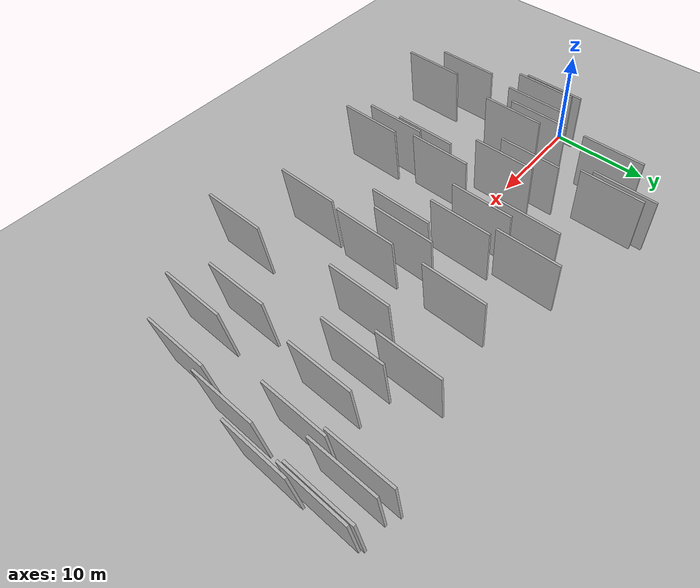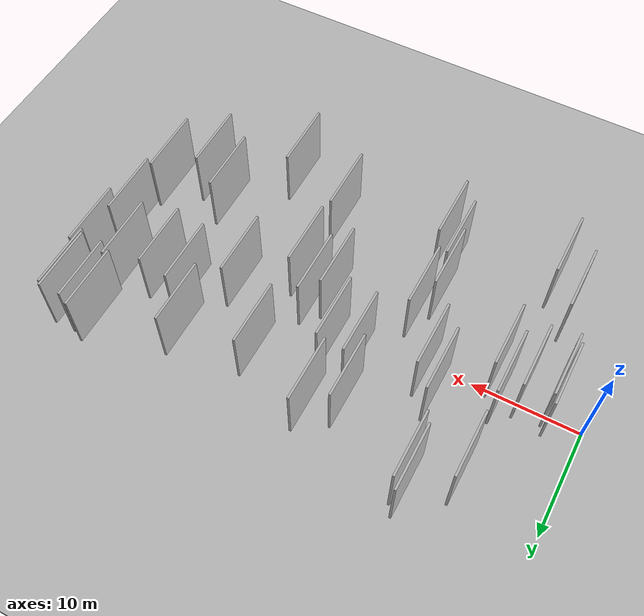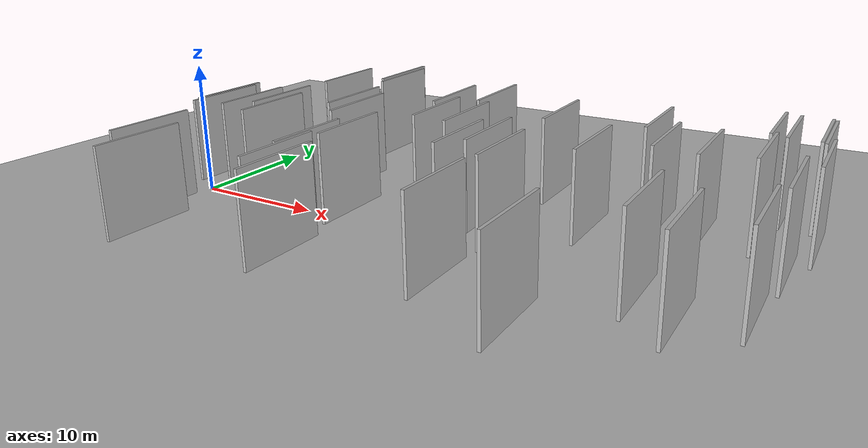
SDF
<?xml version="1.0" encoding="utf-8"?>

<sdf version="1.6">

   <world name="default">

      <gui fullscreen="0">

         <camera name="user_camera">

            <pose>-15 0 4.57585 0 0 0</pose>

            <view_controller>orbit</view_controller>

         </camera>

      </gui>

      <scene>

         <sky>

           <clouds>

             <speed>12</speed>

           </clouds>

         </sky>

         <ambient>0.4 0.4 0.4 1</ambient>

         <background>0.7 0.7 0.7 1</background>

         <shadows>1</shadows>

      </scene>

      <gravity>0 0 -9.8066</gravity>

      <magnetic_field>6e-06 2.3e-05 -4.2e-05</magnetic_field>

      <physics default="0" name="default_physics" type="ode">

         <ode>

            <solver>

               <type>quick</type>

               <iters>10</iters>

               <sor>1.0</sor>

               <use_dynamic_moi_rescaling>0</use_dynamic_moi_rescaling>

            </solver>

            <constraints>

               <cfm>0</cfm>

               <erp>0.2</erp>

               <contact_max_correcting_vel>100</contact_max_correcting_vel>

               <contact_surface_layer>0.001</contact_surface_layer>

            </constraints>

         </ode>

         <max_step_size>0.004</max_step_size>

         <real_time_factor>1</real_time_factor>

         <real_time_update_rate>250</real_time_update_rate>

      </physics>

      <light name="sun" type="directional">

         <cast_shadows>1</cast_shadows>

         <pose>0 0 10 0 0 0</pose>

         <diffuse>0.8 0.8 0.8 1</diffuse>

         <specular>0.2 0.2 0.2 1</specular>

         <attenuation>

            <range>1000</range>

            <constant>0.9</constant>

            <linear>0.01</linear>

            <quadratic>0.001</quadratic>

         </attenuation>

         <direction>-0.5 0.1 -0.9</direction>

      </light>

      <include>

         <name>ground_plane_1</name>

         <uri>model://HANNAS_ground_plane</uri>

         <pose>0 0 0  0 0 0</pose>

      </include>

      <include>

         <name>ground_plane_2</name>

         <uri>model://HANNAS_ground_plane</uri>

         <pose>100 0 0  0 0 0</pose>

      </include>

      <model name="HANNAS_wall_1">

         <static>1</static>

         <pose frame="">27.0744 -9.0535 2.5 0.000000 0.000000 1.570796</pose>

         <link name="link">

            <pose frame="">0 0 3.00 0 0 0</pose>

            <collision name="collision">

               <geometry>

                  <box>

                     <size>6.00 0.2 6.00</size>

                  </box>

               </geometry>

               <max_contacts>10</max_contacts>

               <surface>

                  <contact>

                     <ode/>

                  </contact>

                  <bounce/>

                  <friction>

                     <torsional>

                        <ode/>

                     </torsional>

                     <ode/>

                  </friction>

               </surface>

            </collision>

            <visual name="visual">

               <cast_shadows>0</cast_shadows>

               <geometry>

                  <box>

                     <size>6.00 0.2 6.00</size>

                  </box>

               </geometry>

               <material>

                  <script>

                     <uri>model://HANNAS_wall/materials/scripts</uri>

                     <uri>model://HANNAS_wall/materials/textures</uri>

                     <name>vrc/HANNAS_wall</name>

                  </script>

               </material>

            </visual>

            <self_collide>0</self_collide>

            <enable_wind>0</enable_wind>

            <kinematic>0</kinematic>

         </link>

      </model>

      <model name="HANNAS_wall_2">

         <static>1</static>

         <pose frame="">13.7889 1.6842 2.5 0.000000 0.000000 1.570796</pose>

         <link name="link">

            <pose frame="">0 0 3.00 0 0 0</pose>

            <collision name="collision">

               <geometry>

                  <box>

                     <size>6.00 0.2 6.00</size>

                  </box>

               </geometry>

               <max_contacts>10</max_contacts>

               <surface>

                  <contact>

                     <ode/>

                  </contact>

                  <bounce/>

                  <friction>

                     <torsional>

                        <ode/>

                     </torsional>

                     <ode/>

                  </friction>

               </surface>

            </collision>

            <visual name="visual">

               <cast_shadows>0</cast_shadows>

               <geometry>

                  <box>

                     <size>6.00 0.2 6.00</size>

                  </box>

               </geometry>

               <material>

                  <script>

                     <uri>model://HANNAS_wall/materials/scripts</uri>

                     <uri>model://HANNAS_wall/materials/textures</uri>

                     <name>vrc/HANNAS_wall</name>

                  </script>

               </material>

            </visual>

            <self_collide>0</self_collide>

            <enable_wind>0</enable_wind>

            <kinematic>0</kinematic>

         </link>

      </model>

      <model name="HANNAS_wall_3">

         <static>1</static>

         <pose frame="">3.3820 -0.7569 2.5 0.000000 0.000000 1.570796</pose>

         <link name="link">

            <pose frame="">0 0 3.00 0 0 0</pose>

            <collision name="collision">

               <geometry>

                  <box>

                     <size>6.00 0.2 6.00</size>

                  </box>

               </geometry>

               <max_contacts>10</max_contacts>

               <surface>

                  <contact>

                     <ode/>

                  </contact>

                  <bounce/>

                  <friction>

                     <torsional>

                        <ode/>

                     </torsional>

                     <ode/>

                  </friction>

               </surface>

            </collision>

            <visual name="visual">

               <cast_shadows>0</cast_shadows>

               <geometry>

                  <box>

                     <size>6.00 0.2 6.00</size>

                  </box>

               </geometry>

               <material>

                  <script>

                     <uri>model://HANNAS_wall/materials/scripts</uri>

                     <uri>model://HANNAS_wall/materials/textures</uri>

                     <name>vrc/HANNAS_wall</name>

                  </script>

               </material>

            </visual>

            <self_collide>0</self_collide>

            <enable_wind>0</enable_wind>

            <kinematic>0</kinematic>

         </link>

      </model>

      <model name="HANNAS_wall_4">

         <static>1</static>

         <pose frame="">15.6439 -5.7758 2.5 0.000000 0.000000 1.570796</pose>

         <link name="link">

            <pose frame="">0 0 3.00 0 0 0</pose>

            <collision name="collision">

               <geometry>

                  <box>

                     <size>6.00 0.2 6.00</size>

                  </box>

               </geometry>

               <max_contacts>10</max_contacts>

               <surface>

                  <contact>

                     <ode/>

                  </contact>

                  <bounce/>

                  <friction>

                     <torsional>

                        <ode/>

                     </torsional>

                     <ode/>

                  </friction>

               </surface>

            </collision>

            <visual name="visual">

               <cast_shadows>0</cast_shadows>

               <geometry>

                  <box>

                     <size>6.00 0.2 6.00</size>

                  </box>

               </geometry>

               <material>

                  <script>

                     <uri>model://HANNAS_wall/materials/scripts</uri>

                     <uri>model://HANNAS_wall/materials/textures</uri>

                     <name>vrc/HANNAS_wall</name>

                  </script>

               </material>

            </visual>

            <self_collide>0</self_collide>

            <enable_wind>0</enable_wind>

            <kinematic>0</kinematic>

         </link>

      </model>

      <model name="HANNAS_wall_5">

         <static>1</static>

         <pose frame="">25.3376 0.0256 2.5 0.000000 0.000000 1.570796</pose>

         <link name="link">

            <pose frame="">0 0 3.00 0 0 0</pose>

            <collision name="collision">

               <geometry>

                  <box>

                     <size>6.00 0.2 6.00</size>

                  </box>

               </geometry>

               <max_contacts>10</max_contacts>

               <surface>

                  <contact>

                     <ode/>

                  </contact>

                  <bounce/>

                  <friction>

                     <torsional>

                        <ode/>

                     </torsional>

                     <ode/>

                  </friction>

               </surface>

            </collision>

            <visual name="visual">

               <cast_shadows>0</cast_shadows>

               <geometry>

                  <box>

                     <size>6.00 0.2 6.00</size>

                  </box>

               </geometry>

               <material>

                  <script>

                     <uri>model://HANNAS_wall/materials/scripts</uri>

                     <uri>model://HANNAS_wall/materials/textures</uri>

                     <name>vrc/HANNAS_wall</name>

                  </script>

               </material>

            </visual>

            <self_collide>0</self_collide>

            <enable_wind>0</enable_wind>

            <kinematic>0</kinematic>

         </link>

      </model>

      <model name="HANNAS_wall_6">

         <static>1</static>

         <pose frame="">5.7760 -0.3641 2.5 0.000000 0.000000 1.570796</pose>

         <link name="link">

            <pose frame="">0 0 3.00 0 0 0</pose>

            <collision name="collision">

               <geometry>

                  <box>

                     <size>6.00 0.2 6.00</size>

                  </box>

               </geometry>

               <max_contacts>10</max_contacts>

               <surface>

                  <contact>

                     <ode/>

                  </contact>

                  <bounce/>

                  <friction>

                     <torsional>

                        <ode/>

                     </torsional>

                     <ode/>

                  </friction>

               </surface>

            </collision>

            <visual name="visual">

               <cast_shadows>0</cast_shadows>

               <geometry>

                  <box>

                     <size>6.00 0.2 6.00</size>

                  </box>

               </geometry>

               <material>

                  <script>

                     <uri>model://HANNAS_wall/materials/scripts</uri>

                     <uri>model://HANNAS_wall/materials/textures</uri>

                     <name>vrc/HANNAS_wall</name>

                  </script>

               </material>

            </visual>

            <self_collide>0</self_collide>

            <enable_wind>0</enable_wind>

            <kinematic>0</kinematic>

         </link>

      </model>

      <model name="HANNAS_wall_7">

         <static>1</static>

         <pose frame="">38.2298 3.8320 2.5 0.000000 0.000000 1.570796</pose>

         <link name="link">

            <pose frame="">0 0 3.00 0 0 0</pose>

            <collision name="collision">

               <geometry>

                  <box>

                     <size>6.00 0.2 6.00</size>

                  </box>

               </geometry>

               <max_contacts>10</max_contacts>

               <surface>

                  <contact>

                     <ode/>

                  </contact>

                  <bounce/>

                  <friction>

                     <torsional>

                        <ode/>

                     </torsional>

                     <ode/>

                  </friction>

               </surface>

            </collision>

            <visual name="visual">

               <cast_shadows>0</cast_shadows>

               <geometry>

                  <box>

                     <size>6.00 0.2 6.00</size>

                  </box>

               </geometry>

               <material>

                  <script>

                     <uri>model://HANNAS_wall/materials/scripts</uri>

                     <uri>model://HANNAS_wall/materials/textures</uri>

                     <name>vrc/HANNAS_wall</name>

                  </script>

               </material>

            </visual>

            <self_collide>0</self_collide>

            <enable_wind>0</enable_wind>

            <kinematic>0</kinematic>

         </link>

      </model>

      <model name="HANNAS_wall_8">

         <static>1</static>

         <pose frame="">11.3485 11.0129 2.5 0.000000 0.000000 1.570796</pose>

         <link name="link">

            <pose frame="">0 0 3.00 0 0 0</pose>

            <collision name="collision">

               <geometry>

                  <box>

                     <size>6.00 0.2 6.00</size>

                  </box>

               </geometry>

               <max_contacts>10</max_contacts>

               <surface>

                  <contact>

                     <ode/>

                  </contact>

                  <bounce/>

                  <friction>

                     <torsional>

                        <ode/>

                     </torsional>

                     <ode/>

                  </friction>

               </surface>

            </collision>

            <visual name="visual">

               <cast_shadows>0</cast_shadows>

               <geometry>

                  <box>

                     <size>6.00 0.2 6.00</size>

                  </box>

               </geometry>

               <material>

                  <script>

                     <uri>model://HANNAS_wall/materials/scripts</uri>

                     <uri>model://HANNAS_wall/materials/textures</uri>

                     <name>vrc/HANNAS_wall</name>

                  </script>

               </material>

            </visual>

            <self_collide>0</self_collide>

            <enable_wind>0</enable_wind>

            <kinematic>0</kinematic>

         </link>

      </model>

      <model name="HANNAS_wall_9">

         <static>1</static>

         <pose frame="">44.0192 9.7655 2.5 0.000000 0.000000 1.570796</pose>

         <link name="link">

            <pose frame="">0 0 3.00 0 0 0</pose>

            <collision name="collision">

               <geometry>

                  <box>

                     <size>6.00 0.2 6.00</size>

                  </box>

               </geometry>

               <max_contacts>10</max_contacts>

               <surface>

                  <contact>

                     <ode/>

                  </contact>

                  <bounce/>

                  <friction>

                     <torsional>

                        <ode/>

                     </torsional>

                     <ode/>

                  </friction>

               </surface>

            </collision>

            <visual name="visual">

               <cast_shadows>0</cast_shadows>

               <geometry>

                  <box>

                     <size>6.00 0.2 6.00</size>

                  </box>

               </geometry>

               <material>

                  <script>

                     <uri>model://HANNAS_wall/materials/scripts</uri>

                     <uri>model://HANNAS_wall/materials/textures</uri>

                     <name>vrc/HANNAS_wall</name>

                  </script>

               </material>

            </visual>

            <self_collide>0</self_collide>

            <enable_wind>0</enable_wind>

            <kinematic>0</kinematic>

         </link>

      </model>

      <model name="HANNAS_wall_10">

         <static>1</static>

         <pose frame="">19.3860 3.4030 2.5 0.000000 0.000000 1.570796</pose>

         <link name="link">

            <pose frame="">0 0 3.00 0 0 0</pose>

            <collision name="collision">

               <geometry>

                  <box>

                     <size>6.00 0.2 6.00</size>

                  </box>

               </geometry>

               <max_contacts>10</max_contacts>

               <surface>

                  <contact>

                     <ode/>

                  </contact>

                  <bounce/>

                  <friction>

                     <torsional>

                        <ode/>

                     </torsional>

                     <ode/>

                  </friction>

               </surface>

            </collision>

            <visual name="visual">

               <cast_shadows>0</cast_shadows>

               <geometry>

                  <box>

                     <size>6.00 0.2 6.00</size>

                  </box>

               </geometry>

               <material>

                  <script>

                     <uri>model://HANNAS_wall/materials/scripts</uri>

                     <uri>model://HANNAS_wall/materials/textures</uri>

                     <name>vrc/HANNAS_wall</name>

                  </script>

               </material>

            </visual>

            <self_collide>0</self_collide>

            <enable_wind>0</enable_wind>

            <kinematic>0</kinematic>

         </link>

      </model>

      <model name="HANNAS_wall_11">

         <static>1</static>

         <pose frame="">33.8663 7.9753 2.5 0.000000 0.000000 1.570796</pose>

         <link name="link">

            <pose frame="">0 0 3.00 0 0 0</pose>

            <collision name="collision">

               <geometry>

                  <box>

                     <size>6.00 0.2 6.00</size>

                  </box>

               </geometry>

               <max_contacts>10</max_contacts>

               <surface>

                  <contact>

                     <ode/>

                  </contact>

                  <bounce/>

                  <friction>

                     <torsional>

                        <ode/>

                     </torsional>

                     <ode/>

                  </friction>

               </surface>

            </collision>

            <visual name="visual">

               <cast_shadows>0</cast_shadows>

               <geometry>

                  <box>

                     <size>6.00 0.2 6.00</size>

                  </box>

               </geometry>

               <material>

                  <script>

                     <uri>model://HANNAS_wall/materials/scripts</uri>

                     <uri>model://HANNAS_wall/materials/textures</uri>

                     <name>vrc/HANNAS_wall</name>

                  </script>

               </material>

            </visual>

            <self_collide>0</self_collide>

            <enable_wind>0</enable_wind>

            <kinematic>0</kinematic>

         </link>

      </model>

      <model name="HANNAS_wall_12">

         <static>1</static>

         <pose frame="">31.7840 1.3679 2.5 0.000000 0.000000 1.570796</pose>

         <link name="link">

            <pose frame="">0 0 3.00 0 0 0</pose>

            <collision name="collision">

               <geometry>

                  <box>

                     <size>6.00 0.2 6.00</size>

                  </box>

               </geometry>

               <max_contacts>10</max_contacts>

               <surface>

                  <contact>

                     <ode/>

                  </contact>

                  <bounce/>

                  <friction>

                     <torsional>

                        <ode/>

                     </torsional>

                     <ode/>

                  </friction>

               </surface>

            </collision>

            <visual name="visual">

               <cast_shadows>0</cast_shadows>

               <geometry>

                  <box>

                     <size>6.00 0.2 6.00</size>

                  </box>

               </geometry>

               <material>

                  <script>

                     <uri>model://HANNAS_wall/materials/scripts</uri>

                     <uri>model://HANNAS_wall/materials/textures</uri>

                     <name>vrc/HANNAS_wall</name>

                  </script>

               </material>

            </visual>

            <self_collide>0</self_collide>

            <enable_wind>0</enable_wind>

            <kinematic>0</kinematic>

         </link>

      </model>

      <model name="HANNAS_wall_13">

         <static>1</static>

         <pose frame="">44.2721 9.4727 2.5 0.000000 0.000000 1.570796</pose>

         <link name="link">

            <pose frame="">0 0 3.00 0 0 0</pose>

            <collision name="collision">

               <geometry>

                  <box>

                     <size>6.00 0.2 6.00</size>

                  </box>

               </geometry>

               <max_contacts>10</max_contacts>

               <surface>

                  <contact>

                     <ode/>

                  </contact>

                  <bounce/>

                  <friction>

                     <torsional>

                        <ode/>

                     </torsional>

                     <ode/>

                  </friction>

               </surface>

            </collision>

            <visual name="visual">

               <cast_shadows>0</cast_shadows>

               <geometry>

                  <box>

                     <size>6.00 0.2 6.00</size>

                  </box>

               </geometry>

               <material>

                  <script>

                     <uri>model://HANNAS_wall/materials/scripts</uri>

                     <uri>model://HANNAS_wall/materials/textures</uri>

                     <name>vrc/HANNAS_wall</name>

                  </script>

               </material>

            </visual>

            <self_collide>0</self_collide>

            <enable_wind>0</enable_wind>

            <kinematic>0</kinematic>

         </link>

      </model>

      <model name="HANNAS_wall_14">

         <static>1</static>

         <pose frame="">8.4149 -1.1228 2.5 0.000000 0.000000 1.570796</pose>

         <link name="link">

            <pose frame="">0 0 3.00 0 0 0</pose>

            <collision name="collision">

               <geometry>

                  <box>

                     <size>6.00 0.2 6.00</size>

                  </box>

               </geometry>

               <max_contacts>10</max_contacts>

               <surface>

                  <contact>

                     <ode/>

                  </contact>

                  <bounce/>

                  <friction>

                     <torsional>

                        <ode/>

                     </torsional>

                     <ode/>

                  </friction>

               </surface>

            </collision>

            <visual name="visual">

               <cast_shadows>0</cast_shadows>

               <geometry>

                  <box>

                     <size>6.00 0.2 6.00</size>

                  </box>

               </geometry>

               <material>

                  <script>

                     <uri>model://HANNAS_wall/materials/scripts</uri>

                     <uri>model://HANNAS_wall/materials/textures</uri>

                     <name>vrc/HANNAS_wall</name>

                  </script>

               </material>

            </visual>

            <self_collide>0</self_collide>

            <enable_wind>0</enable_wind>

            <kinematic>0</kinematic>

         </link>

      </model>

      <model name="HANNAS_wall_15">

         <static>1</static>

         <pose frame="">16.0448 -8.9529 2.5 0.000000 0.000000 1.570796</pose>

         <link name="link">

            <pose frame="">0 0 3.00 0 0 0</pose>

            <collision name="collision">

               <geometry>

                  <box>

                     <size>6.00 0.2 6.00</size>

                  </box>

               </geometry>

               <max_contacts>10</max_contacts>

               <surface>

                  <contact>

                     <ode/>

                  </contact>

                  <bounce/>

                  <friction>

                     <torsional>

                        <ode/>

                     </torsional>

                     <ode/>

                  </friction>

               </surface>

            </collision>

            <visual name="visual">

               <cast_shadows>0</cast_shadows>

               <geometry>

                  <box>

                     <size>6.00 0.2 6.00</size>

                  </box>

               </geometry>

               <material>

                  <script>

                     <uri>model://HANNAS_wall/materials/scripts</uri>

                     <uri>model://HANNAS_wall/materials/textures</uri>

                     <name>vrc/HANNAS_wall</name>

                  </script>

               </material>

            </visual>

            <self_collide>0</self_collide>

            <enable_wind>0</enable_wind>

            <kinematic>0</kinematic>

         </link>

      </model>

      <model name="HANNAS_wall_16">

         <static>1</static>

         <pose frame="">16.7786 -3.1345 2.5 0.000000 0.000000 1.570796</pose>

         <link name="link">

            <pose frame="">0 0 3.00 0 0 0</pose>

            <collision name="collision">

               <geometry>

                  <box>

                     <size>6.00 0.2 6.00</size>

                  </box>

               </geometry>

               <max_contacts>10</max_contacts>

               <surface>

                  <contact>

                     <ode/>

                  </contact>

                  <bounce/>

                  <friction>

                     <torsional>

                        <ode/>

                     </torsional>

                     <ode/>

                  </friction>

               </surface>

            </collision>

            <visual name="visual">

               <cast_shadows>0</cast_shadows>

               <geometry>

                  <box>

                     <size>6.00 0.2 6.00</size>

                  </box>

               </geometry>

               <material>

                  <script>

                     <uri>model://HANNAS_wall/materials/scripts</uri>

                     <uri>model://HANNAS_wall/materials/textures</uri>

                     <name>vrc/HANNAS_wall</name>

                  </script>

               </material>

            </visual>

            <self_collide>0</self_collide>

            <enable_wind>0</enable_wind>

            <kinematic>0</kinematic>

         </link>

      </model>

      <model name="HANNAS_wall_17">

         <static>1</static>

         <pose frame="">39.8531 -7.6576 2.5 0.000000 0.000000 1.570796</pose>

         <link name="link">

            <pose frame="">0 0 3.00 0 0 0</pose>

            <collision name="collision">

               <geometry>

                  <box>

                     <size>6.00 0.2 6.00</size>

                  </box>

               </geometry>

               <max_contacts>10</max_contacts>

               <surface>

                  <contact>

                     <ode/>

                  </contact>

                  <bounce/>

                  <friction>

                     <torsional>

                        <ode/>

                     </torsional>

                     <ode/>

                  </friction>

               </surface>

            </collision>

            <visual name="visual">

               <cast_shadows>0</cast_shadows>

               <geometry>

                  <box>

                     <size>6.00 0.2 6.00</size>

                  </box>

               </geometry>

               <material>

                  <script>

                     <uri>model://HANNAS_wall/materials/scripts</uri>

                     <uri>model://HANNAS_wall/materials/textures</uri>

                     <name>vrc/HANNAS_wall</name>

                  </script>

               </material>

            </visual>

            <self_collide>0</self_collide>

            <enable_wind>0</enable_wind>

            <kinematic>0</kinematic>

         </link>

      </model>

      <model name="HANNAS_wall_18">

         <static>1</static>

         <pose frame="">7.2695 -11.5768 2.5 0.000000 0.000000 1.570796</pose>

         <link name="link">

            <pose frame="">0 0 3.00 0 0 0</pose>

            <collision name="collision">

               <geometry>

                  <box>

                     <size>6.00 0.2 6.00</size>

                  </box>

               </geometry>

               <max_contacts>10</max_contacts>

               <surface>

                  <contact>

                     <ode/>

                  </contact>

                  <bounce/>

                  <friction>

                     <torsional>

                        <ode/>

                     </torsional>

                     <ode/>

                  </friction>

               </surface>

            </collision>

            <visual name="visual">

               <cast_shadows>0</cast_shadows>

               <geometry>

                  <box>

                     <size>6.00 0.2 6.00</size>

                  </box>

               </geometry>

               <material>

                  <script>

                     <uri>model://HANNAS_wall/materials/scripts</uri>

                     <uri>model://HANNAS_wall/materials/textures</uri>

                     <name>vrc/HANNAS_wall</name>

                  </script>

               </material>

            </visual>

            <self_collide>0</self_collide>

            <enable_wind>0</enable_wind>

            <kinematic>0</kinematic>

         </link>

      </model>

      <model name="HANNAS_wall_19">

         <static>1</static>

         <pose frame="">37.3080 -5.8432 2.5 0.000000 0.000000 1.570796</pose>

         <link name="link">

            <pose frame="">0 0 3.00 0 0 0</pose>

            <collision name="collision">

               <geometry>

                  <box>

                     <size>6.00 0.2 6.00</size>

                  </box>

               </geometry>

               <max_contacts>10</max_contacts>

               <surface>

                  <contact>

                     <ode/>

                  </contact>

                  <bounce/>

                  <friction>

                     <torsional>

                        <ode/>

                     </torsional>

                     <ode/>

                  </friction>

               </surface>

            </collision>

            <visual name="visual">

               <cast_shadows>0</cast_shadows>

               <geometry>

                  <box>

                     <size>6.00 0.2 6.00</size>

                  </box>

               </geometry>

               <material>

                  <script>

                     <uri>model://HANNAS_wall/materials/scripts</uri>

                     <uri>model://HANNAS_wall/materials/textures</uri>

                     <name>vrc/HANNAS_wall</name>

                  </script>

               </material>

            </visual>

            <self_collide>0</self_collide>

            <enable_wind>0</enable_wind>

            <kinematic>0</kinematic>

         </link>

      </model>

      <model name="HANNAS_wall_20">

         <static>1</static>

         <pose frame="">18.4727 7.4047 2.5 0.000000 0.000000 1.570796</pose>

         <link name="link">

            <pose frame="">0 0 3.00 0 0 0</pose>

            <collision name="collision">

               <geometry>

                  <box>

                     <size>6.00 0.2 6.00</size>

                  </box>

               </geometry>

               <max_contacts>10</max_contacts>

               <surface>

                  <contact>

                     <ode/>

                  </contact>

                  <bounce/>

                  <friction>

                     <torsional>

                        <ode/>

                     </torsional>

                     <ode/>

                  </friction>

               </surface>

            </collision>

            <visual name="visual">

               <cast_shadows>0</cast_shadows>

               <geometry>

                  <box>

                     <size>6.00 0.2 6.00</size>

                  </box>

               </geometry>

               <material>

                  <script>

                     <uri>model://HANNAS_wall/materials/scripts</uri>

                     <uri>model://HANNAS_wall/materials/textures</uri>

                     <name>vrc/HANNAS_wall</name>

                  </script>

               </material>

            </visual>

            <self_collide>0</self_collide>

            <enable_wind>0</enable_wind>

            <kinematic>0</kinematic>

         </link>

      </model>

      <model name="HANNAS_wall_21">

         <static>1</static>

         <pose frame="">27.3486 6.7698 2.5 0.000000 0.000000 1.570796</pose>

         <link name="link">

            <pose frame="">0 0 3.00 0 0 0</pose>

            <collision name="collision">

               <geometry>

                  <box>

                     <size>6.00 0.2 6.00</size>

                  </box>

               </geometry>

               <max_contacts>10</max_contacts>

               <surface>

                  <contact>

                     <ode/>

                  </contact>

                  <bounce/>

                  <friction>

                     <torsional>

                        <ode/>

                     </torsional>

                     <ode/>

                  </friction>

               </surface>

            </collision>

            <visual name="visual">

               <cast_shadows>0</cast_shadows>

               <geometry>

                  <box>

                     <size>6.00 0.2 6.00</size>

                  </box>

               </geometry>

               <material>

                  <script>

                     <uri>model://HANNAS_wall/materials/scripts</uri>

                     <uri>model://HANNAS_wall/materials/textures</uri>

                     <name>vrc/HANNAS_wall</name>

                  </script>

               </material>

            </visual>

            <self_collide>0</self_collide>

            <enable_wind>0</enable_wind>

            <kinematic>0</kinematic>

         </link>

      </model>

      <model name="HANNAS_wall_22">

         <static>1</static>

         <pose frame="">23.9756 -1.4024 2.5 0.000000 0.000000 1.570796</pose>

         <link name="link">

            <pose frame="">0 0 3.00 0 0 0</pose>

            <collision name="collision">

               <geometry>

                  <box>

                     <size>6.00 0.2 6.00</size>

                  </box>

               </geometry>

               <max_contacts>10</max_contacts>

               <surface>

                  <contact>

                     <ode/>

                  </contact>

                  <bounce/>

                  <friction>

                     <torsional>

                        <ode/>

                     </torsional>

                     <ode/>

                  </friction>

               </surface>

            </collision>

            <visual name="visual">

               <cast_shadows>0</cast_shadows>

               <geometry>

                  <box>

                     <size>6.00 0.2 6.00</size>

                  </box>

               </geometry>

               <material>

                  <script>

                     <uri>model://HANNAS_wall/materials/scripts</uri>

                     <uri>model://HANNAS_wall/materials/textures</uri>

                     <name>vrc/HANNAS_wall</name>

                  </script>

               </material>

            </visual>

            <self_collide>0</self_collide>

            <enable_wind>0</enable_wind>

            <kinematic>0</kinematic>

         </link>

      </model>

      <model name="HANNAS_wall_23">

         <static>1</static>

         <pose frame="">17.5317 -10.6852 2.5 0.000000 0.000000 1.570796</pose>

         <link name="link">

            <pose frame="">0 0 3.00 0 0 0</pose>

            <collision name="collision">

               <geometry>

                  <box>

                     <size>6.00 0.2 6.00</size>

                  </box>

               </geometry>

               <max_contacts>10</max_contacts>

               <surface>

                  <contact>

                     <ode/>

                  </contact>

                  <bounce/>

                  <friction>

                     <torsional>

                        <ode/>

                     </torsional>

                     <ode/>

                  </friction>

               </surface>

            </collision>

            <visual name="visual">

               <cast_shadows>0</cast_shadows>

               <geometry>

                  <box>

                     <size>6.00 0.2 6.00</size>

                  </box>

               </geometry>

               <material>

                  <script>

                     <uri>model://HANNAS_wall/materials/scripts</uri>

                     <uri>model://HANNAS_wall/materials/textures</uri>

                     <name>vrc/HANNAS_wall</name>

                  </script>

               </material>

            </visual>

            <self_collide>0</self_collide>

            <enable_wind>0</enable_wind>

            <kinematic>0</kinematic>

         </link>

      </model>

      <model name="HANNAS_wall_24">

         <static>1</static>

         <pose frame="">32.7707 -11.5747 2.5 0.000000 0.000000 1.570796</pose>

         <link name="link">

            <pose frame="">0 0 3.00 0 0 0</pose>

            <collision name="collision">

               <geometry>

                  <box>

                     <size>6.00 0.2 6.00</size>

                  </box>

               </geometry>

               <max_contacts>10</max_contacts>

               <surface>

                  <contact>

                     <ode/>

                  </contact>

                  <bounce/>

                  <friction>

                     <torsional>

                        <ode/>

                     </torsional>

                     <ode/>

                  </friction>

               </surface>

            </collision>

            <visual name="visual">

               <cast_shadows>0</cast_shadows>

               <geometry>

                  <box>

                     <size>6.00 0.2 6.00</size>

                  </box>

               </geometry>

               <material>

                  <script>

                     <uri>model://HANNAS_wall/materials/scripts</uri>

                     <uri>model://HANNAS_wall/materials/textures</uri>

                     <name>vrc/HANNAS_wall</name>

                  </script>

               </material>

            </visual>

            <self_collide>0</self_collide>

            <enable_wind>0</enable_wind>

            <kinematic>0</kinematic>

         </link>

      </model>

      <model name="HANNAS_wall_25">

         <static>1</static>

         <pose frame="">21.1210 9.1530 2.5 0.000000 0.000000 1.570796</pose>

         <link name="link">

            <pose frame="">0 0 3.00 0 0 0</pose>

            <collision name="collision">

               <geometry>

                  <box>

                     <size>6.00 0.2 6.00</size>

                  </box>

               </geometry>

               <max_contacts>10</max_contacts>

               <surface>

                  <contact>

                     <ode/>

                  </contact>

                  <bounce/>

                  <friction>

                     <torsional>

                        <ode/>

                     </torsional>

                     <ode/>

                  </friction>

               </surface>

            </collision>

            <visual name="visual">

               <cast_shadows>0</cast_shadows>

               <geometry>

                  <box>

                     <size>6.00 0.2 6.00</size>

                  </box>

               </geometry>

               <material>

                  <script>

                     <uri>model://HANNAS_wall/materials/scripts</uri>

                     <uri>model://HANNAS_wall/materials/textures</uri>

                     <name>vrc/HANNAS_wall</name>

                  </script>

               </material>

            </visual>

            <self_collide>0</self_collide>

            <enable_wind>0</enable_wind>

            <kinematic>0</kinematic>

         </link>

      </model>

      <model name="HANNAS_wall_26">

         <static>1</static>

         <pose frame="">3.0637 0.0169 2.5 0.000000 0.000000 1.570796</pose>

         <link name="link">

            <pose frame="">0 0 3.00 0 0 0</pose>

            <collision name="collision">

               <geometry>

                  <box>

                     <size>6.00 0.2 6.00</size>

                  </box>

               </geometry>

               <max_contacts>10</max_contacts>

               <surface>

                  <contact>

                     <ode/>

                  </contact>

                  <bounce/>

                  <friction>

                     <torsional>

                        <ode/>

                     </torsional>

                     <ode/>

                  </friction>

               </surface>

            </collision>

            <visual name="visual">

               <cast_shadows>0</cast_shadows>

               <geometry>

                  <box>

                     <size>6.00 0.2 6.00</size>

                  </box>

               </geometry>

               <material>

                  <script>

                     <uri>model://HANNAS_wall/materials/scripts</uri>

                     <uri>model://HANNAS_wall/materials/textures</uri>

                     <name>vrc/HANNAS_wall</name>

                  </script>

               </material>

            </visual>

            <self_collide>0</self_collide>

            <enable_wind>0</enable_wind>

            <kinematic>0</kinematic>

         </link>

      </model>

      <model name="HANNAS_wall_27">

         <static>1</static>

         <pose frame="">35.4563 4.2122 2.5 0.000000 0.000000 1.570796</pose>

         <link name="link">

            <pose frame="">0 0 3.00 0 0 0</pose>

            <collision name="collision">

               <geometry>

                  <box>

                     <size>6.00 0.2 6.00</size>

                  </box>

               </geometry>

               <max_contacts>10</max_contacts>

               <surface>

                  <contact>

                     <ode/>

                  </contact>

                  <bounce/>

                  <friction>

                     <torsional>

                        <ode/>

                     </torsional>

                     <ode/>

                  </friction>

               </surface>

            </collision>

            <visual name="visual">

               <cast_shadows>0</cast_shadows>

               <geometry>

                  <box>

                     <size>6.00 0.2 6.00</size>

                  </box>

               </geometry>

               <material>

                  <script>

                     <uri>model://HANNAS_wall/materials/scripts</uri>

                     <uri>model://HANNAS_wall/materials/textures</uri>

                     <name>vrc/HANNAS_wall</name>

                  </script>

               </material>

            </visual>

            <self_collide>0</self_collide>

            <enable_wind>0</enable_wind>

            <kinematic>0</kinematic>

         </link>

      </model>

      <model name="HANNAS_wall_28">

         <static>1</static>

         <pose frame="">10.7874 11.9045 2.5 0.000000 0.000000 1.570796</pose>

         <link name="link">

            <pose frame="">0 0 3.00 0 0 0</pose>

            <collision name="collision">

               <geometry>

                  <box>

                     <size>6.00 0.2 6.00</size>

                  </box>

               </geometry>

               <max_contacts>10</max_contacts>

               <surface>

                  <contact>

                     <ode/>

                  </contact>

                  <bounce/>

                  <friction>

                     <torsional>

                        <ode/>

                     </torsional>

                     <ode/>

                  </friction>

               </surface>

            </collision>

            <visual name="visual">

               <cast_shadows>0</cast_shadows>

               <geometry>

                  <box>

                     <size>6.00 0.2 6.00</size>

                  </box>

               </geometry>

               <material>

                  <script>

                     <uri>model://HANNAS_wall/materials/scripts</uri>

                     <uri>model://HANNAS_wall/materials/textures</uri>

                     <name>vrc/HANNAS_wall</name>

                  </script>

               </material>

            </visual>

            <self_collide>0</self_collide>

            <enable_wind>0</enable_wind>

            <kinematic>0</kinematic>

         </link>

      </model>

      <model name="HANNAS_wall_29">

         <static>1</static>

         <pose frame="">41.3328 4.7037 2.5 0.000000 0.000000 1.570796</pose>

         <link name="link">

            <pose frame="">0 0 3.00 0 0 0</pose>

            <collision name="collision">

               <geometry>

                  <box>

                     <size>6.00 0.2 6.00</size>

                  </box>

               </geometry>

               <max_contacts>10</max_contacts>

               <surface>

                  <contact>

                     <ode/>

                  </contact>

                  <bounce/>

                  <friction>

                     <torsional>

                        <ode/>

                     </torsional>

                     <ode/>

                  </friction>

               </surface>

            </collision>

            <visual name="visual">

               <cast_shadows>0</cast_shadows>

               <geometry>

                  <box>

                     <size>6.00 0.2 6.00</size>

                  </box>

               </geometry>

               <material>

                  <script>

                     <uri>model://HANNAS_wall/materials/scripts</uri>

                     <uri>model://HANNAS_wall/materials/textures</uri>

                     <name>vrc/HANNAS_wall</name>

                  </script>

               </material>

            </visual>

            <self_collide>0</self_collide>

            <enable_wind>0</enable_wind>

            <kinematic>0</kinematic>

         </link>

      </model>

      <model name="HANNAS_wall_30">

         <static>1</static>

         <pose frame="">7.3863 8.9202 2.5 0.000000 0.000000 1.570796</pose>

         <link name="link">

            <pose frame="">0 0 3.00 0 0 0</pose>

            <collision name="collision">

               <geometry>

                  <box>

                     <size>6.00 0.2 6.00</size>

                  </box>

               </geometry>

               <max_contacts>10</max_contacts>

               <surface>

                  <contact>

                     <ode/>

                  </contact>

                  <bounce/>

                  <friction>

                     <torsional>

                        <ode/>

                     </torsional>

                     <ode/>

                  </friction>

               </surface>

            </collision>

            <visual name="visual">

               <cast_shadows>0</cast_shadows>

               <geometry>

                  <box>

                     <size>6.00 0.2 6.00</size>

                  </box>

               </geometry>

               <material>

                  <script>

                     <uri>model://HANNAS_wall/materials/scripts</uri>

                     <uri>model://HANNAS_wall/materials/textures</uri>

                     <name>vrc/HANNAS_wall</name>

                  </script>

               </material>

            </visual>

            <self_collide>0</self_collide>

            <enable_wind>0</enable_wind>

            <kinematic>0</kinematic>

         </link>

      </model>

      <model name="HANNAS_wall_31">

         <static>1</static>

         <pose frame="">42.0592 9.7460 2.5 0.000000 0.000000 1.570796</pose>

         <link name="link">

            <pose frame="">0 0 3.00 0 0 0</pose>

            <collision name="collision">

               <geometry>

                  <box>

                     <size>6.00 0.2 6.00</size>

                  </box>

               </geometry>

               <max_contacts>10</max_contacts>

               <surface>

                  <contact>

                     <ode/>

                  </contact>

                  <bounce/>

                  <friction>

                     <torsional>

                        <ode/>

                     </torsional>

                     <ode/>

                  </friction>

               </surface>

            </collision>

            <visual name="visual">

               <cast_shadows>0</cast_shadows>

               <geometry>

                  <box>

                     <size>6.00 0.2 6.00</size>

                  </box>

               </geometry>

               <material>

                  <script>

                     <uri>model://HANNAS_wall/materials/scripts</uri>

                     <uri>model://HANNAS_wall/materials/textures</uri>

                     <name>vrc/HANNAS_wall</name>

                  </script>

               </material>

            </visual>

            <self_collide>0</self_collide>

            <enable_wind>0</enable_wind>

            <kinematic>0</kinematic>

         </link>

      </model>

      <model name="HANNAS_wall_32">

         <static>1</static>

         <pose frame="">27.3869 -2.2023 2.5 0.000000 0.000000 1.570796</pose>

         <link name="link">

            <pose frame="">0 0 3.00 0 0 0</pose>

            <collision name="collision">

               <geometry>

                  <box>

                     <size>6.00 0.2 6.00</size>

                  </box>

               </geometry>

               <max_contacts>10</max_contacts>

               <surface>

                  <contact>

                     <ode/>

                  </contact>

                  <bounce/>

                  <friction>

                     <torsional>

                        <ode/>

                     </torsional>

                     <ode/>

                  </friction>

               </surface>

            </collision>

            <visual name="visual">

               <cast_shadows>0</cast_shadows>

               <geometry>

                  <box>

                     <size>6.00 0.2 6.00</size>

                  </box>

               </geometry>

               <material>

                  <script>

                     <uri>model://HANNAS_wall/materials/scripts</uri>

                     <uri>model://HANNAS_wall/materials/textures</uri>

                     <name>vrc/HANNAS_wall</name>

                  </script>

               </material>

            </visual>

            <self_collide>0</self_collide>

            <enable_wind>0</enable_wind>

            <kinematic>0</kinematic>

         </link>

      </model>

      <model name="HANNAS_wall_33">

         <static>1</static>

         <pose frame="">7.3274 1.0531 2.5 0.000000 0.000000 1.570796</pose>

         <link name="link">

            <pose frame="">0 0 3.00 0 0 0</pose>

            <collision name="collision">

               <geometry>

                  <box>

                     <size>6.00 0.2 6.00</size>

                  </box>

               </geometry>

               <max_contacts>10</max_contacts>

               <surface>

                  <contact>

                     <ode/>

                  </contact>

                  <bounce/>

                  <friction>

                     <torsional>

                        <ode/>

                     </torsional>

                     <ode/>

                  </friction>

               </surface>

            </collision>

            <visual name="visual">

               <cast_shadows>0</cast_shadows>

               <geometry>

                  <box>

                     <size>6.00 0.2 6.00</size>

                  </box>

               </geometry>

               <material>

                  <script>

                     <uri>model://HANNAS_wall/materials/scripts</uri>

                     <uri>model://HANNAS_wall/materials/textures</uri>

                     <name>vrc/HANNAS_wall</name>

                  </script>

               </material>

            </visual>

            <self_collide>0</self_collide>

            <enable_wind>0</enable_wind>

            <kinematic>0</kinematic>

         </link>

      </model>

      <model name="HANNAS_wall_34">

         <static>1</static>

         <pose frame="">21.9280 3.1331 2.5 0.000000 0.000000 1.570796</pose>

         <link name="link">

            <pose frame="">0 0 3.00 0 0 0</pose>

            <collision name="collision">

               <geometry>

                  <box>

                     <size>6.00 0.2 6.00</size>

                  </box>

               </geometry>

               <max_contacts>10</max_contacts>

               <surface>

                  <contact>

                     <ode/>

                  </contact>

                  <bounce/>

                  <friction>

                     <torsional>

                        <ode/>

                     </torsional>

                     <ode/>

                  </friction>

               </surface>

            </collision>

            <visual name="visual">

               <cast_shadows>0</cast_shadows>

               <geometry>

                  <box>

                     <size>6.00 0.2 6.00</size>

                  </box>

               </geometry>

               <material>

                  <script>

                     <uri>model://HANNAS_wall/materials/scripts</uri>

                     <uri>model://HANNAS_wall/materials/textures</uri>

                     <name>vrc/HANNAS_wall</name>

                  </script>

               </material>

            </visual>

            <self_collide>0</self_collide>

            <enable_wind>0</enable_wind>

            <kinematic>0</kinematic>

         </link>

      </model>

      <model name="HANNAS_wall_35">

         <static>1</static>

         <pose frame="">12.2232 3.3554 2.5 0.000000 0.000000 1.570796</pose>

         <link name="link">

            <pose frame="">0 0 3.00 0 0 0</pose>

            <collision name="collision">

               <geometry>

                  <box>

                     <size>6.00 0.2 6.00</size>

                  </box>

               </geometry>

               <max_contacts>10</max_contacts>

               <surface>

                  <contact>

                     <ode/>

                  </contact>

                  <bounce/>

                  <friction>

                     <torsional>

                        <ode/>

                     </torsional>

                     <ode/>

                  </friction>

               </surface>

            </collision>

            <visual name="visual">

               <cast_shadows>0</cast_shadows>

               <geometry>

                  <box>

                     <size>6.00 0.2 6.00</size>

                  </box>

               </geometry>

               <material>

                  <script>

                     <uri>model://HANNAS_wall/materials/scripts</uri>

                     <uri>model://HANNAS_wall/materials/textures</uri>

                     <name>vrc/HANNAS_wall</name>

                  </script>

               </material>

            </visual>

            <self_collide>0</self_collide>

            <enable_wind>0</enable_wind>

            <kinematic>0</kinematic>

         </link>

      </model>

      <model name="HANNAS_wall_36">

         <static>1</static>

         <pose frame="">44.6421 4.7331 2.5 0.000000 0.000000 1.570796</pose>

         <link name="link">

            <pose frame="">0 0 3.00 0 0 0</pose>

            <collision name="collision">

               <geometry>

                  <box>

                     <size>6.00 0.2 6.00</size>

                  </box>

               </geometry>

               <max_contacts>10</max_contacts>

               <surface>

                  <contact>

                     <ode/>

                  </contact>

                  <bounce/>

                  <friction>

                     <torsional>

                        <ode/>

                     </torsional>

                     <ode/>

                  </friction>

               </surface>

            </collision>

            <visual name="visual">

               <cast_shadows>0</cast_shadows>

               <geometry>

                  <box>

                     <size>6.00 0.2 6.00</size>

                  </box>

               </geometry>

               <material>

                  <script>

                     <uri>model://HANNAS_wall/materials/scripts</uri>

                     <uri>model://HANNAS_wall/materials/textures</uri>

                     <name>vrc/HANNAS_wall</name>

                  </script>

               </material>

            </visual>

            <self_collide>0</self_collide>

            <enable_wind>0</enable_wind>

            <kinematic>0</kinematic>

         </link>

      </model>

      <model name="HANNAS_wall_37">

         <static>1</static>

         <pose frame="">41.0191 10.2441 2.5 0.000000 0.000000 1.570796</pose>

         <link name="link">

            <pose frame="">0 0 3.00 0 0 0</pose>

            <collision name="collision">

               <geometry>

                  <box>

                     <size>6.00 0.2 6.00</size>

                  </box>

               </geometry>

               <max_contacts>10</max_contacts>

               <surface>

                  <contact>

                     <ode/>

                  </contact>

                  <bounce/>

                  <friction>

                     <torsional>

                        <ode/>

                     </torsional>

                     <ode/>

                  </friction>

               </surface>

            </collision>

            <visual name="visual">

               <cast_shadows>0</cast_shadows>

               <geometry>

                  <box>

                     <size>6.00 0.2 6.00</size>

                  </box>

               </geometry>

               <material>

                  <script>

                     <uri>model://HANNAS_wall/materials/scripts</uri>

                     <uri>model://HANNAS_wall/materials/textures</uri>

                     <name>vrc/HANNAS_wall</name>

                  </script>

               </material>

            </visual>

            <self_collide>0</self_collide>

            <enable_wind>0</enable_wind>

            <kinematic>0</kinematic>

         </link>

      </model>

      <model name="HANNAS_wall_38">

         <static>1</static>

         <pose frame="">43.6462 0.4292 2.5 0.000000 0.000000 1.570796</pose>

         <link name="link">

            <pose frame="">0 0 3.00 0 0 0</pose>

            <collision name="collision">

               <geometry>

                  <box>

                     <size>6.00 0.2 6.00</size>

                  </box>

               </geometry>

               <max_contacts>10</max_contacts>

               <surface>

                  <contact>

                     <ode/>

                  </contact>

                  <bounce/>

                  <friction>

                     <torsional>

                        <ode/>

                     </torsional>

                     <ode/>

                  </friction>

               </surface>

            </collision>

            <visual name="visual">

               <cast_shadows>0</cast_shadows>

               <geometry>

                  <box>

                     <size>6.00 0.2 6.00</size>

                  </box>

               </geometry>

               <material>

                  <script>

                     <uri>model://HANNAS_wall/materials/scripts</uri>

                     <uri>model://HANNAS_wall/materials/textures</uri>

                     <name>vrc/HANNAS_wall</name>

                  </script>

               </material>

            </visual>

            <self_collide>0</self_collide>

            <enable_wind>0</enable_wind>

            <kinematic>0</kinematic>

         </link>

      </model>

      <model name="HANNAS_wall_39">

         <static>1</static>

         <pose frame="">5.1031 -8.9002 2.5 0.000000 0.000000 1.570796</pose>

         <link name="link">

            <pose frame="">0 0 3.00 0 0 0</pose>

            <collision name="collision">

               <geometry>

                  <box>

                     <size>6.00 0.2 6.00</size>

                  </box>

               </geometry>

               <max_contacts>10</max_contacts>

               <surface>

                  <contact>

                     <ode/>

                  </contact>

                  <bounce/>

                  <friction>

                     <torsional>

                        <ode/>

                     </torsional>

                     <ode/>

                  </friction>

               </surface>

            </collision>

            <visual name="visual">

               <cast_shadows>0</cast_shadows>

               <geometry>

                  <box>

                     <size>6.00 0.2 6.00</size>

                  </box>

               </geometry>

               <material>

                  <script>

                     <uri>model://HANNAS_wall/materials/scripts</uri>

                     <uri>model://HANNAS_wall/materials/textures</uri>

                     <name>vrc/HANNAS_wall</name>

                  </script>

               </material>

            </visual>

            <self_collide>0</self_collide>

            <enable_wind>0</enable_wind>

            <kinematic>0</kinematic>

         </link>

      </model>

      <model name="HANNAS_wall_40">

         <static>1</static>

         <pose frame="">43.0728 -5.2582 2.5 0.000000 0.000000 1.570796</pose>

         <link name="link">

            <pose frame="">0 0 3.00 0 0 0</pose>

            <collision name="collision">

               <geometry>

                  <box>

                     <size>6.00 0.2 6.00</size>

                  </box>

               </geometry>

               <max_contacts>10</max_contacts>

               <surface>

                  <contact>

                     <ode/>

                  </contact>

                  <bounce/>

                  <friction>

                     <torsional>

                        <ode/>

                     </torsional>

                     <ode/>

                  </friction>

               </surface>

            </collision>

            <visual name="visual">

               <cast_shadows>0</cast_shadows>

               <geometry>

                  <box>

                     <size>6.00 0.2 6.00</size>

                  </box>

               </geometry>

               <material>

                  <script>

                     <uri>model://HANNAS_wall/materials/scripts</uri>

                     <uri>model://HANNAS_wall/materials/textures</uri>

                     <name>vrc/HANNAS_wall</name>

                  </script>

               </material>

            </visual>

            <self_collide>0</self_collide>

            <enable_wind>0</enable_wind>

            <kinematic>0</kinematic>

         </link>

      </model>

   </world>

</sdf>
